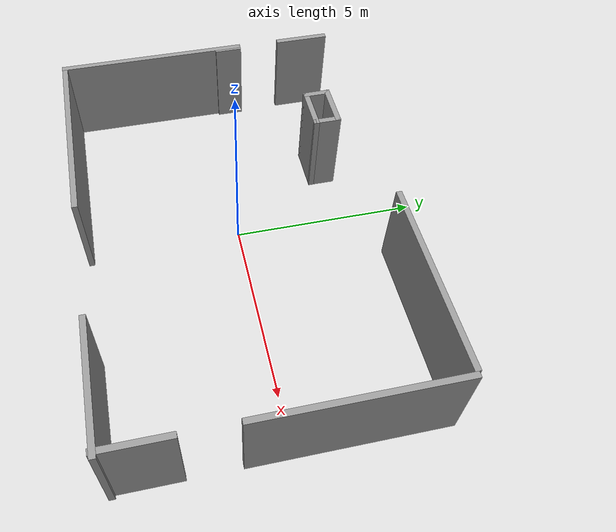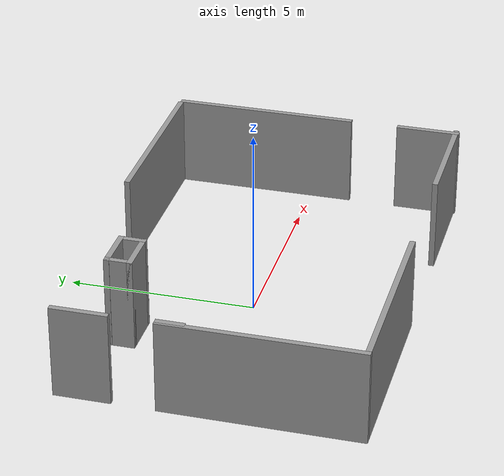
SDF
<?xml version='1.0'?>
<sdf version='1.6'>
  <model name='highbay'>
    <pose frame=''>0.715354 -0.134951 0 0 -0 0</pose>
    <link name='Wall_13'>
      <collision name='Wall_13_Collision'>
        <geometry>
          <box>
            <size>1.25 0.15 2.5</size>
          </box>
        </geometry>
        <pose frame=''>0 0 1.25 0 -0 0</pose>
      </collision>
      <visual name='Wall_13_Visual'>
        <pose frame=''>0 0 1.25 0 -0 0</pose>
        <geometry>
          <box>
            <size>1.25 0.15 2.5</size>
          </box>
        </geometry>
        <material>
          <script>
            <uri>file://media/materials/scripts/gazebo.material</uri>
            <name>Gazebo/Grey</name>
          </script>
          <ambient>1 1 1 0.8</ambient>
          <diffuse>1 1 1 0.8</diffuse>
          <specular>0.01 0.01 0.01 0.8</specular>
          <emissive>0 0 0 0.8</emissive>
        </material>
        <meta>
          <layer>0</layer>
        </meta>
      </visual>
      <pose frame=''>-2.74868 3.22027 0 0 -0 3.14159</pose>
    </link>
    <link name='Wall_18'>
      <collision name='Wall_18_Collision'>
        <geometry>
          <box>
            <size>0.75 0.15 2.5</size>
          </box>
        </geometry>
        <pose frame=''>0 0 1.25 0 -0 0</pose>
      </collision>
      <visual name='Wall_18_Visual'>
        <pose frame=''>0 0 1.25 0 -0 0</pose>
        <geometry>
          <box>
            <size>0.75 0.15 2.5</size>
          </box>
        </geometry>
        <material>
          <script>
            <uri>file://media/materials/scripts/gazebo.material</uri>
            <name>Gazebo/Grey</name>
          </script>
          <ambient>1 1 1 0.8</ambient>
          <diffuse>1 1 1 0.8</diffuse>
          <specular>0.01 0.01 0.01 0.8</specular>
          <emissive>0 0 0 0.8</emissive>
        </material>
        <meta>
          <layer>0</layer>
        </meta>
      </visual>
      <pose frame=''>-3.29326 2.91908 0 0 -0 -1.5708</pose>
    </link>
    <link name='Wall_2'>
      <collision name='Wall_2_Collision'>
        <geometry>
          <box>
            <size>5.25 0.15 2.5</size>
          </box>
        </geometry>
        <pose frame=''>0 0 1.25 0 -0 0</pose>
      </collision>
      <visual name='Wall_2_Visual'>
        <pose frame=''>0 0 1.25 0 -0 0</pose>
        <geometry>
          <box>
            <size>5.25 0.15 2.5</size>
          </box>
        </geometry>
        <material>
          <script>
            <uri>file://media/materials/scripts/gazebo.material</uri>
            <name>Gazebo/Grey</name>
          </script>
          <ambient>1 1 1 0.8</ambient>
          <diffuse>1 1 1 0.8</diffuse>
          <specular>0.01 0.01 0.01 0.8</specular>
          <emissive>0 0 0 0.8</emissive>
        </material>
        <meta>
          <layer>0</layer>
        </meta>
      </visual>
      <pose frame=''>-3.10348 -3.95675 0 0 -0 0</pose>
    </link>
    <link name='Wall_20'>
      <collision name='Wall_20_Collision'>
        <geometry>
          <box>
            <size>1.25 0.15 2.5</size>
          </box>
        </geometry>
        <pose frame=''>0 0 1.25 0 -0 0</pose>
      </collision>
      <visual name='Wall_20_Visual'>
        <pose frame=''>0 0 1.25 0 -0 0</pose>
        <geometry>
          <box>
            <size>1.25 0.15 2.5</size>
          </box>
        </geometry>
        <material>
          <script>
            <uri>file://media/materials/scripts/gazebo.material</uri>
            <name>Gazebo/Grey</name>
          </script>
          <ambient>1 1 1 0.8</ambient>
          <diffuse>1 1 1 0.8</diffuse>
          <specular>0.01 0.01 0.01 0.8</specular>
          <emissive>0 0 0 0.8</emissive>
        </material>
        <meta>
          <layer>0</layer>
        </meta>
      </visual>
      <pose frame=''>-2.74326 2.61908 0 0 -0 0</pose>
    </link>
    <link name='Wall_22'>
      <collision name='Wall_22_Collision'>
        <geometry>
          <box>
            <size>0.75 0.15 2.5</size>
          </box>
        </geometry>
        <pose frame=''>0 0 1.25 0 -0 0</pose>
      </collision>
      <visual name='Wall_22_Visual'>
        <pose frame=''>0 0 1.25 0 -0 0</pose>
        <geometry>
          <box>
            <size>0.75 0.15 2.5</size>
          </box>
        </geometry>
        <material>
          <script>
            <uri>file://media/materials/scripts/gazebo.material</uri>
            <name>Gazebo/Grey</name>
          </script>
          <ambient>1 1 1 0.8</ambient>
          <diffuse>1 1 1 0.8</diffuse>
          <specular>0.01 0.01 0.01 0.8</specular>
          <emissive>0 0 0 0.8</emissive>
        </material>
        <meta>
          <layer>0</layer>
        </meta>
      </visual>
      <pose frame=''>-2.19761 2.91908 0 0 -0 -1.5708</pose>
    </link>
    <link name='Wall_24'>
      <collision name='Wall_24_Collision'>
        <geometry>
          <box>
            <size>3.25 0.15 2.5</size>
          </box>
        </geometry>
        <pose frame=''>0 0 1.25 0 -0 0</pose>
      </collision>
      <visual name='Wall_24_Visual'>
        <pose frame=''>0 0 1.25 0 -0 0</pose>
        <geometry>
          <box>
            <size>3.25 0.15 2.5</size>
          </box>
        </geometry>
        <material>
          <script>
            <uri>file://media/materials/scripts/gazebo.material</uri>
            <name>Gazebo/Grey</name>
          </script>
          <ambient>1 1 1 0.8</ambient>
          <diffuse>1 1 1 0.8</diffuse>
          <specular>0.01 0.01 0.01 0.8</specular>
          <emissive>0 0 0 0.8</emissive>
        </material>
        <meta>
          <layer>0</layer>
        </meta>
      </visual>
      <pose frame=''>4.25333 -3.95016 0 0 -0 0</pose>
    </link>
    <link name='Wall_26'>
      <collision name='Wall_26_Collision'>
        <geometry>
          <box>
            <size>1.75 0.15 2.5</size>
          </box>
        </geometry>
        <pose frame=''>0 0 1.25 0 -0 0</pose>
      </collision>
      <visual name='Wall_26_Visual'>
        <pose frame=''>0 0 1.25 0 -0 0</pose>
        <geometry>
          <box>
            <size>1.75 0.15 2.5</size>
          </box>
        </geometry>
        <material>
          <script>
            <uri>file://media/materials/scripts/gazebo.material</uri>
            <name>Gazebo/Grey</name>
          </script>
          <ambient>1 1 1 0.8</ambient>
          <diffuse>1 1 1 0.8</diffuse>
          <specular>0.01 0.01 0.01 0.8</specular>
          <emissive>0 0 0 0.8</emissive>
        </material>
        <meta>
          <layer>0</layer>
        </meta>
      </visual>
      <pose frame=''>5.72213 -3.17946 0 0 -0 1.5708</pose>
    </link>
    <link name='Wall_28'>
      <collision name='Wall_28_Collision'>
        <geometry>
          <box>
            <size>5 0.15 2.5</size>
          </box>
        </geometry>
        <pose frame=''>0 0 1.25 0 -0 0</pose>
      </collision>
      <visual name='Wall_28_Visual'>
        <pose frame=''>0 0 1.25 0 -0 0</pose>
        <geometry>
          <box>
            <size>5 0.15 2.5</size>
          </box>
        </geometry>
        <material>
          <script>
            <uri>file://media/materials/scripts/gazebo.material</uri>
            <name>Gazebo/Grey</name>
          </script>
          <ambient>1 1 1 0.8</ambient>
          <diffuse>1 1 1 0.8</diffuse>
          <specular>0.01 0.01 0.01 0.8</specular>
          <emissive>0 0 0 0.8</emissive>
        </material>
        <meta>
          <layer>0</layer>
        </meta>
      </visual>
      <pose frame=''>5.72499 1.4964 0 0 -0 -1.5708</pose>
    </link>
    <link name='Wall_30'>
      <collision name='Wall_30_Collision'>
        <geometry>
          <box>
            <size>5 0.15 2.5</size>
          </box>
        </geometry>
        <pose frame=''>0 0 1.25 0 -0 0</pose>
      </collision>
      <visual name='Wall_30_Visual'>
        <pose frame=''>0 0 1.25 0 -0 0</pose>
        <geometry>
          <box>
            <size>5 0.15 2.5</size>
          </box>
        </geometry>
        <material>
          <script>
            <uri>file://media/materials/scripts/gazebo.material</uri>
            <name>Gazebo/Grey</name>
          </script>
          <ambient>1 1 1 0.8</ambient>
          <diffuse>1 1 1 0.8</diffuse>
          <specular>0.01 0.01 0.01 0.8</specular>
          <emissive>0 0 0 0.8</emissive>
        </material>
        <meta>
          <layer>0</layer>
        </meta>
      </visual>
      <pose frame=''>3.15126 3.97946 0 0 -0 3.14159</pose>
    </link>
    <link name='Wall_33'>
      <collision name='Wall_33_Collision'>
        <geometry>
          <box>
            <size>0.75 0.15 2.5</size>
          </box>
        </geometry>
        <pose frame=''>0 0 1.25 0 -0 0</pose>
      </collision>
      <visual name='Wall_33_Visual'>
        <pose frame=''>0 0 1.25 0 -0 0</pose>
        <geometry>
          <box>
            <size>0.75 0.15 2.5</size>
          </box>
        </geometry>
        <material>
          <script>
            <uri>file://media/materials/scripts/gazebo.material</uri>
            <name>Gazebo/Grey</name>
          </script>
          <ambient>1 1 1 0.8</ambient>
          <diffuse>1 1 1 0.8</diffuse>
          <specular>0.01 0.01 0.01 0.8</specular>
          <emissive>0 0 0 0.8</emissive>
        </material>
        <meta>
          <layer>0</layer>
        </meta>
      </visual>
      <pose frame=''>-5.73491 0.84373 0 0 -0 -1.5708</pose>
    </link>
    <link name='Wall_4'>
      <collision name='Wall_4_Collision'>
        <geometry>
          <box>
            <size>5.25 0.15 2.5</size>
          </box>
        </geometry>
        <pose frame=''>0 0 1.25 0 -0 0</pose>
      </collision>
      <visual name='Wall_4_Visual'>
        <pose frame=''>0 0 1.25 0 -0 0</pose>
        <geometry>
          <box>
            <size>5.25 0.15 2.5</size>
          </box>
        </geometry>
        <material>
          <script>
            <uri>file://media/materials/scripts/gazebo.material</uri>
            <name>Gazebo/Grey</name>
          </script>
          <ambient>1 1 1 0.8</ambient>
          <diffuse>1 1 1 0.8</diffuse>
          <specular>0.01 0.01 0.01 0.8</specular>
          <emissive>0 0 0 0.8</emissive>
        </material>
        <meta>
          <layer>0</layer>
        </meta>
      </visual>
      <pose frame=''>-5.80333 -1.40664 0 0 -0 -1.5708</pose>
    </link>
    <link name='Wall_6'>
      <collision name='Wall_6_Collision'>
        <geometry>
          <box>
            <size>1.5 0.15 2.5</size>
          </box>
        </geometry>
        <pose frame=''>0 0 1.25 0 -0 0</pose>
      </collision>
      <visual name='Wall_6_Visual'>
        <pose frame=''>0 0 1.25 0 -0 0</pose>
        <geometry>
          <box>
            <size>1.5 0.15 2.5</size>
          </box>
        </geometry>
        <material>
          <script>
            <uri>file://media/materials/scripts/gazebo.material</uri>
            <name>Gazebo/Grey</name>
          </script>
          <ambient>1 1 1 0.8</ambient>
          <diffuse>1 1 1 0.8</diffuse>
          <specular>0.01 0.01 0.01 0.8</specular>
          <emissive>0 0 0 0.8</emissive>
        </material>
        <meta>
          <layer>0</layer>
        </meta>
      </visual>
      <pose frame=''>-5.79524 3.09998 0 0 -0 -1.5708</pose>
    </link>
    <static>1</static>
  </model>
</sdf>
